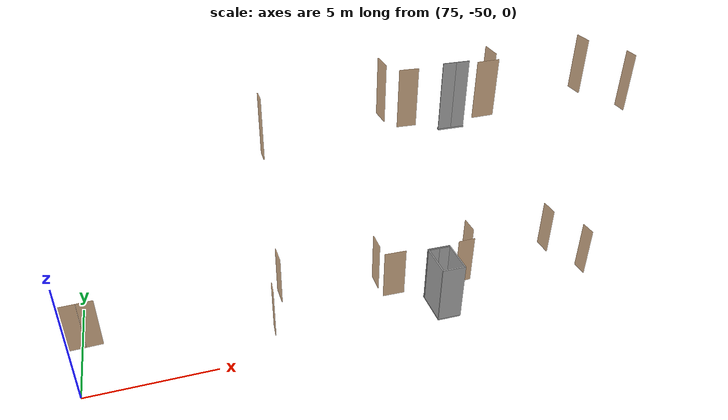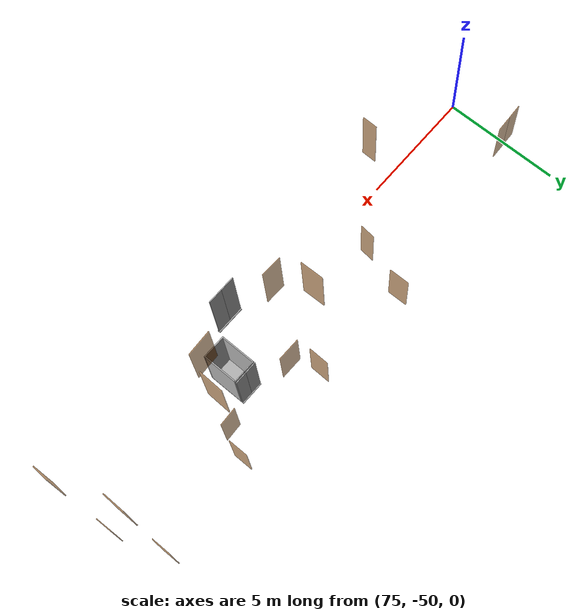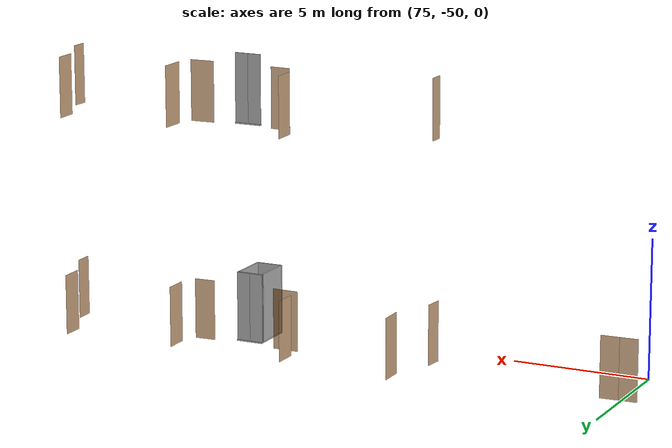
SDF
<sdf version="1.7">
 <world name="sim_world">
  <model name="TD0001EC2">
   <pose>75.12317994179705 -47.33942553554783 0.0 0 0 0.04271923748868774</pose>
   <link name="right">
    <pose>0.3341276760392261 0 1.11 0 0 0</pose>
    <visual name="right_visual">
     <geometry><box><size>0.6582553520784522 0.03 2.2</size></box></geometry>
     <material>
      <ambient>0.5 0.25 0 0.6</ambient>
      <diffuse>0.5 0.25 0 0.6</diffuse>
      <pbr><metal><metalness>0.0</metalness></metal></pbr>
     </material>
    </visual>
    <collision name="right_collision">
     <geometry><box><size>0.6582553520784522 0.03 2.2</size></box></geometry>
     <surface><contact><collide_bitmask>0x02</collide_bitmask></contact></surface>
    </collision>
    <inertial>
     <mass>50.0</mass>
     <inertia><ixx>20.17041666666667</ixx><iyy>21.972083785583035</iyy><izz>1.809167118916363</izz></inertia>
    </inertial>
   </link>
   <joint name="right_joint" type="revolute">
    <parent>world</parent>
    <child>right</child>
    <axis><xyz>0 0 -1</xyz><limit><lower>0</lower><upper>1.57</upper></limit></axis>
    <pose>0.3341276760392261 0 0 0 0 0</pose>
   </joint>
   <link name="left">
    <pose>-0.3341276760392261 0 1.11 0 0 0</pose>
    <visual name="left_visual">
     <geometry><box><size>0.6582553520784522 0.03 2.2</size></box></geometry>
     <material>
      <ambient>0.5 0.25 0 0.6</ambient>
      <diffuse>0.5 0.25 0 0.6</diffuse>
      <pbr><metal><metalness>0.0</metalness></metal></pbr>
     </material>
    </visual>
    <collision name="left_collision">
     <geometry><box><size>0.6582553520784522 0.03 2.2</size></box></geometry>
     <surface><contact><collide_bitmask>0x02</collide_bitmask></contact></surface>
    </collision>
    <inertial>
     <mass>50.0</mass>
     <inertia><ixx>20.17041666666667</ixx><iyy>21.972083785583035</iyy><izz>1.809167118916363</izz></inertia>
    </inertial>
   </link>
   <joint name="left_joint" type="revolute">
    <parent>world</parent>
    <child>left</child>
    <axis><xyz>0 0 -1</xyz><limit><lower>-1.57</lower><upper>0</upper></limit></axis>
    <pose>-0.3341276760392261 0 0 0 0 0</pose>
   </joint>
   <plugin name="register_component" filename="libregister_component.so">
    <component name="Door">
     <v_max_door>0.5</v_max_door>
     <a_max_door>0.3</a_max_door>
     <a_nom_door>0.15</a_nom_door>
     <dx_min_door>0.01</dx_min_door>
     <f_max_door>500.0</f_max_door>
     <ros_interface>true</ros_interface>
     <door name="TD0001EC2" type="DoubleSwingDoor" left_joint_name="left_joint" right_joint_name="right_joint"/>
    </component>
   </plugin>
  </model>
  <model name="bano012">
   <pose>82.44700350917586 -48.49807562310532 0.0 0 0 1.470619011720645</pose>
   <link name="right">
    <pose>0 0 1.11 0 0 0</pose>
    <visual name="right_visual">
     <geometry><box><size>0.6442041280268124 0.03 2.2</size></box></geometry>
     <material>
      <ambient>0.5 0.25 0 0.6</ambient>
      <diffuse>0.5 0.25 0 0.6</diffuse>
      <pbr><metal><metalness>0.0</metalness></metal></pbr>
     </material>
    </visual>
    <collision name="right_collision">
     <geometry><box><size>0.6442041280268124 0.03 2.2</size></box></geometry>
     <surface><contact><collide_bitmask>0x02</collide_bitmask></contact></surface>
    </collision>
    <inertial>
     <mass>50.0</mass>
     <inertia><ixx>20.17041666666667</ixx><iyy>21.895828994028278</iyy><izz>1.732912327361607</izz></inertia>
    </inertial>
   </link>
   <joint name="right_joint" type="revolute">
    <parent>world</parent>
    <child>right</child>
    <axis><xyz>0 0 -1</xyz><limit><lower>0</lower><upper>1.57</upper></limit></axis>
    <pose>0.3271020640134062 0 0 0 0 0</pose>
   </joint>
   <plugin name="register_component" filename="libregister_component.so">
    <component name="Door">
     <v_max_door>0.5</v_max_door>
     <a_max_door>0.3</a_max_door>
     <a_nom_door>0.15</a_nom_door>
     <dx_min_door>0.01</dx_min_door>
     <f_max_door>500.0</f_max_door>
     <ros_interface>true</ros_interface>
     <door name="bano012" type="SwingDoor" left_joint_name="empty_joint" right_joint_name="right_joint"/>
    </component>
   </plugin>
  </model>
  <model name="bano011">
   <pose>83.10448165831423 -46.433011116580694 0.0 0 0 1.5813146373530425</pose>
   <link name="right">
    <pose>0 0 1.11 0 0 0</pose>
    <visual name="right_visual">
     <geometry><box><size>0.8585081539588288 0.03 2.2</size></box></geometry>
     <material>
      <ambient>0.5 0.25 0 0.6</ambient>
      <diffuse>0.5 0.25 0 0.6</diffuse>
      <pbr><metal><metalness>0.0</metalness></metal></pbr>
     </material>
    </visual>
    <collision name="right_collision">
     <geometry><box><size>0.8585081539588288 0.03 2.2</size></box></geometry>
     <surface><contact><collide_bitmask>0x02</collide_bitmask></contact></surface>
    </collision>
    <inertial>
     <mass>50.0</mass>
     <inertia><ixx>20.17041666666667</ixx><iyy>23.237651043390823</iyy><izz>3.074734376724151</izz></inertia>
    </inertial>
   </link>
   <joint name="right_joint" type="revolute">
    <parent>world</parent>
    <child>right</child>
    <axis><xyz>0 0 -1</xyz><limit><lower>0</lower><upper>1.57</upper></limit></axis>
    <pose>0.4342540769794144 0 0 0 0 0</pose>
   </joint>
   <plugin name="register_component" filename="libregister_component.so">
    <component name="Door">
     <v_max_door>0.5</v_max_door>
     <a_max_door>0.3</a_max_door>
     <a_nom_door>0.15</a_nom_door>
     <dx_min_door>0.01</dx_min_door>
     <f_max_door>500.0</f_max_door>
     <ros_interface>true</ros_interface>
     <door name="bano011" type="SwingDoor" left_joint_name="empty_joint" right_joint_name="right_joint"/>
    </component>
   </plugin>
  </model>
  <model name="TD0009CW">
   <pose>87.36086317499587 -46.727566624388615 0.0 0 0 1.548810095529099</pose>
   <link name="right">
    <pose>0 0 1.11 0 0 0</pose>
    <visual name="right_visual">
     <geometry><box><size>0.8506552947807262 0.03 2.2</size></box></geometry>
     <material>
      <ambient>0.5 0.25 0 0.6</ambient>
      <diffuse>0.5 0.25 0 0.6</diffuse>
      <pbr><metal><metalness>0.0</metalness></metal></pbr>
     </material>
    </visual>
    <collision name="right_collision">
     <geometry><box><size>0.8506552947807262 0.03 2.2</size></box></geometry>
     <surface><contact><collide_bitmask>0x02</collide_bitmask></contact></surface>
    </collision>
    <inertial>
     <mass>50.0</mass>
     <inertia><ixx>20.17041666666667</ixx><iyy>23.181726793910357</iyy><izz>3.0188101272436842</izz></inertia>
    </inertial>
   </link>
   <joint name="right_joint" type="revolute">
    <parent>world</parent>
    <child>right</child>
    <axis><xyz>0 0 -1</xyz><limit><lower>0</lower><upper>1.57</upper></limit></axis>
    <pose>0.4303276473903631 0 0 0 0 0</pose>
   </joint>
   <plugin name="register_component" filename="libregister_component.so">
    <component name="Door">
     <v_max_door>0.5</v_max_door>
     <a_max_door>0.3</a_max_door>
     <a_nom_door>0.15</a_nom_door>
     <dx_min_door>0.01</dx_min_door>
     <f_max_door>500.0</f_max_door>
     <ros_interface>true</ros_interface>
     <door name="TD0009CW" type="SwingDoor" left_joint_name="empty_joint" right_joint_name="right_joint"/>
    </component>
   </plugin>
  </model>
  <model name="bano015">
   <pose>87.85361827983951 -47.72009086205543 0.0 0 0 3.131120733187098</pose>
   <link name="right">
    <pose>0 0 1.11 0 0 0</pose>
    <visual name="right_visual">
     <geometry><box><size>0.9523774060063468 0.03 2.2</size></box></geometry>
     <material>
      <ambient>0.5 0.25 0 0.6</ambient>
      <diffuse>0.5 0.25 0 0.6</diffuse>
      <pbr><metal><metalness>0.0</metalness></metal></pbr>
     </material>
    </visual>
    <collision name="right_collision">
     <geometry><box><size>0.9523774060063468 0.03 2.2</size></box></geometry>
     <surface><contact><collide_bitmask>0x02</collide_bitmask></contact></surface>
    </collision>
    <inertial>
     <mass>50.0</mass>
     <inertia><ixx>20.17041666666667</ixx><iyy>23.945928014464076</iyy><izz>3.7830113477974083</izz></inertia>
    </inertial>
   </link>
   <joint name="right_joint" type="revolute">
    <parent>world</parent>
    <child>right</child>
    <axis><xyz>0 0 -1</xyz><limit><lower>0</lower><upper>1.57</upper></limit></axis>
    <pose>0.4811887030031734 0 0 0 0 0</pose>
   </joint>
   <plugin name="register_component" filename="libregister_component.so">
    <component name="Door">
     <v_max_door>0.5</v_max_door>
     <a_max_door>0.3</a_max_door>
     <a_nom_door>0.15</a_nom_door>
     <dx_min_door>0.01</dx_min_door>
     <f_max_door>500.0</f_max_door>
     <ros_interface>true</ros_interface>
     <door name="bano015" type="SwingDoor" left_joint_name="empty_joint" right_joint_name="right_joint"/>
    </component>
   </plugin>
  </model>
  <model name="bano016">
   <pose>91.10995652086022 -47.73456781580528 0.0 0 0 0.0493386622574908</pose>
   <link name="right">
    <pose>0 0 1.11 0 0 0</pose>
    <visual name="right_visual">
     <geometry><box><size>0.7568425849847848 0.03 2.2</size></box></geometry>
     <material>
      <ambient>0.5 0.25 0 0.6</ambient>
      <diffuse>0.5 0.25 0 0.6</diffuse>
      <pbr><metal><metalness>0.0</metalness></metal></pbr>
     </material>
    </visual>
    <collision name="right_collision">
     <geometry><box><size>0.7568425849847848 0.03 2.2</size></box></geometry>
     <surface><contact><collide_bitmask>0x02</collide_bitmask></contact></surface>
    </collision>
    <inertial>
     <mass>50.0</mass>
     <inertia><ixx>20.17041666666667</ixx><iyy>22.553377910193554</iyy><izz>2.3904612435268806</izz></inertia>
    </inertial>
   </link>
   <joint name="right_joint" type="revolute">
    <parent>world</parent>
    <child>right</child>
    <axis><xyz>0 0 1</xyz><limit><lower>0</lower><upper>1.57</upper></limit></axis>
    <pose>0.38342129249239243 0 0 0 0 0</pose>
   </joint>
   <plugin name="register_component" filename="libregister_component.so">
    <component name="Door">
     <v_max_door>0.5</v_max_door>
     <a_max_door>0.3</a_max_door>
     <a_nom_door>0.15</a_nom_door>
     <dx_min_door>0.01</dx_min_door>
     <f_max_door>500.0</f_max_door>
     <ros_interface>true</ros_interface>
     <door name="bano016" type="SwingDoor" left_joint_name="empty_joint" right_joint_name="right_joint"/>
    </component>
   </plugin>
  </model>
  <model name="TD0010CW">
   <pose>91.71982905929562 -46.703932155708635 0.0 0 0 1.5707963267948966</pose>
   <link name="right">
    <pose>0 0 1.11 0 0 0</pose>
    <visual name="right_visual">
     <geometry><box><size>0.8220769448283869 0.03 2.2</size></box></geometry>
     <material>
      <ambient>0.5 0.25 0 0.6</ambient>
      <diffuse>0.5 0.25 0 0.6</diffuse>
      <pbr><metal><metalness>0.0</metalness></metal></pbr>
     </material>
    </visual>
    <collision name="right_collision">
     <geometry><box><size>0.8220769448283869 0.03 2.2</size></box></geometry>
     <surface><contact><collide_bitmask>0x02</collide_bitmask></contact></surface>
    </collision>
    <inertial>
     <mass>50.0</mass>
     <inertia><ixx>20.17041666666667</ixx><iyy>22.9825437634099</iyy><izz>2.819627096743228</izz></inertia>
    </inertial>
   </link>
   <joint name="right_joint" type="revolute">
    <parent>world</parent>
    <child>right</child>
    <axis><xyz>0 0 1</xyz><limit><lower>0</lower><upper>1.57</upper></limit></axis>
    <pose>0.41603847241419345 0 0 0 0 0</pose>
   </joint>
   <plugin name="register_component" filename="libregister_component.so">
    <component name="Door">
     <v_max_door>0.5</v_max_door>
     <a_max_door>0.3</a_max_door>
     <a_nom_door>0.15</a_nom_door>
     <dx_min_door>0.01</dx_min_door>
     <f_max_door>500.0</f_max_door>
     <ros_interface>true</ros_interface>
     <door name="TD0010CW" type="SwingDoor" left_joint_name="empty_joint" right_joint_name="right_joint"/>
    </component>
   </plugin>
  </model>
  <model name="bano017">
   <pose>95.89357971515548 -46.43758987404577 0.0 0 0 1.5818987977262087</pose>
   <link name="right">
    <pose>0 0 1.11 0 0 0</pose>
    <visual name="right_visual">
     <geometry><box><size>0.8128130271172215 0.03 2.2</size></box></geometry>
     <material>
      <ambient>0.5 0.25 0 0.6</ambient>
      <diffuse>0.5 0.25 0 0.6</diffuse>
      <pbr><metal><metalness>0.0</metalness></metal></pbr>
     </material>
    </visual>
    <collision name="right_collision">
     <geometry><box><size>0.8128130271172215 0.03 2.2</size></box></geometry>
     <surface><contact><collide_bitmask>0x02</collide_bitmask></contact></surface>
    </collision>
    <inertial>
     <mass>50.0</mass>
     <inertia><ixx>20.17041666666667</ixx><iyy>22.919437571047762</iyy><izz>2.7565209043810874</izz></inertia>
    </inertial>
   </link>
   <joint name="right_joint" type="revolute">
    <parent>world</parent>
    <child>right</child>
    <axis><xyz>0 0 1</xyz><limit><lower>0</lower><upper>1.57</upper></limit></axis>
    <pose>0.41140651355861074 0 0 0 0 0</pose>
   </joint>
   <plugin name="register_component" filename="libregister_component.so">
    <component name="Door">
     <v_max_door>0.5</v_max_door>
     <a_max_door>0.3</a_max_door>
     <a_nom_door>0.15</a_nom_door>
     <dx_min_door>0.01</dx_min_door>
     <f_max_door>500.0</f_max_door>
     <ros_interface>true</ros_interface>
     <door name="bano017" type="SwingDoor" left_joint_name="empty_joint" right_joint_name="right_joint"/>
    </component>
   </plugin>
  </model>
  <model name="bano018">
   <pose>96.61255686161878 -48.44135738725127 0.0 0 0 1.5939053097456333</pose>
   <link name="right">
    <pose>0 0 1.11 0 0 0</pose>
    <visual name="right_visual">
     <geometry><box><size>0.6631448530400826 0.03 2.2</size></box></geometry>
     <material>
      <ambient>0.5 0.25 0 0.6</ambient>
      <diffuse>0.5 0.25 0 0.6</diffuse>
      <pbr><metal><metalness>0.0</metalness></metal></pbr>
     </material>
    </visual>
    <collision name="right_collision">
     <geometry><box><size>0.6631448530400826 0.03 2.2</size></box></geometry>
     <surface><contact><collide_bitmask>0x02</collide_bitmask></contact></surface>
    </collision>
    <inertial>
     <mass>50.0</mass>
     <inertia><ixx>20.17041666666667</ixx><iyy>21.999004567139806</iyy><izz>1.8360879004731367</izz></inertia>
    </inertial>
   </link>
   <joint name="right_joint" type="revolute">
    <parent>world</parent>
    <child>right</child>
    <axis><xyz>0 0 1</xyz><limit><lower>0</lower><upper>1.57</upper></limit></axis>
    <pose>0.3365724265200413 0 0 0 0 0</pose>
   </joint>
   <plugin name="register_component" filename="libregister_component.so">
    <component name="Door">
     <v_max_door>0.5</v_max_door>
     <a_max_door>0.3</a_max_door>
     <a_nom_door>0.15</a_nom_door>
     <dx_min_door>0.01</dx_min_door>
     <f_max_door>500.0</f_max_door>
     <ros_interface>true</ros_interface>
     <door name="bano018" type="SwingDoor" left_joint_name="empty_joint" right_joint_name="right_joint"/>
    </component>
   </plugin>
  </model>
  <model name="bano12">
   <pose>82.42250377956982 -48.55080670870155 8.0 0 0 1.549933353693263</pose>
   <link name="right">
    <pose>0 0 1.11 0 0 0</pose>
    <visual name="right_visual">
     <geometry><box><size>0.5266028313164499 0.03 2.2</size></box></geometry>
     <material>
      <ambient>0.5 0.25 0 0.6</ambient>
      <diffuse>0.5 0.25 0 0.6</diffuse>
      <pbr><metal><metalness>0.0</metalness></metal></pbr>
     </material>
    </visual>
    <collision name="right_collision">
     <geometry><box><size>0.5266028313164499 0.03 2.2</size></box></geometry>
     <surface><contact><collide_bitmask>0x02</collide_bitmask></contact></surface>
    </collision>
    <inertial>
     <mass>50.0</mass>
     <inertia><ixx>20.17041666666667</ixx><iyy>21.322127258127093</iyy><izz>1.1592105914604227</izz></inertia>
    </inertial>
   </link>
   <joint name="right_joint" type="revolute">
    <parent>world</parent>
    <child>right</child>
    <axis><xyz>0 0 -1</xyz><limit><lower>0</lower><upper>1.57</upper></limit></axis>
    <pose>0.26830141565822496 0 0 0 0 0</pose>
   </joint>
   <plugin name="register_component" filename="libregister_component.so">
    <component name="Door">
     <v_max_door>0.5</v_max_door>
     <a_max_door>0.3</a_max_door>
     <a_nom_door>0.15</a_nom_door>
     <dx_min_door>0.01</dx_min_door>
     <f_max_door>500.0</f_max_door>
     <ros_interface>true</ros_interface>
     <door name="bano12" type="SwingDoor" left_joint_name="empty_joint" right_joint_name="right_joint"/>
    </component>
   </plugin>
  </model>
  <model name="TD0116CW">
   <pose>87.33556820432368 -46.71327545660678 8.0 0 0 1.5897047612231876</pose>
   <link name="right">
    <pose>0 0 1.11 0 0 0</pose>
    <visual name="right_visual">
     <geometry><box><size>0.8193714331441315 0.03 2.2</size></box></geometry>
     <material>
      <ambient>0.5 0.25 0 0.6</ambient>
      <diffuse>0.5 0.25 0 0.6</diffuse>
      <pbr><metal><metalness>0.0</metalness></metal></pbr>
     </material>
    </visual>
    <collision name="right_collision">
     <geometry><box><size>0.8193714331441315 0.03 2.2</size></box></geometry>
     <surface><contact><collide_bitmask>0x02</collide_bitmask></contact></surface>
    </collision>
    <inertial>
     <mass>50.0</mass>
     <inertia><ixx>20.17041666666667</ixx><iyy>22.964039772719456</iyy><izz>2.8011231060527835</izz></inertia>
    </inertial>
   </link>
   <joint name="right_joint" type="revolute">
    <parent>world</parent>
    <child>right</child>
    <axis><xyz>0 0 -1</xyz><limit><lower>0</lower><upper>1.57</upper></limit></axis>
    <pose>0.41468571657206577 0 0 0 0 0</pose>
   </joint>
   <plugin name="register_component" filename="libregister_component.so">
    <component name="Door">
     <v_max_door>0.5</v_max_door>
     <a_max_door>0.3</a_max_door>
     <a_nom_door>0.15</a_nom_door>
     <dx_min_door>0.01</dx_min_door>
     <f_max_door>500.0</f_max_door>
     <ros_interface>true</ros_interface>
     <door name="TD0116CW" type="SwingDoor" left_joint_name="empty_joint" right_joint_name="right_joint"/>
    </component>
   </plugin>
  </model>
  <model name="bano15">
   <pose>87.99969229539565 -47.717978297521626 8.0 0 0 3.1074870969399293</pose>
   <link name="right">
    <pose>0 0 1.11 0 0 0</pose>
    <visual name="right_visual">
     <geometry><box><size>0.727989818265767 0.03 2.2</size></box></geometry>
     <material>
      <ambient>0.5 0.25 0 0.6</ambient>
      <diffuse>0.5 0.25 0 0.6</diffuse>
      <pbr><metal><metalness>0.0</metalness></metal></pbr>
     </material>
    </visual>
    <collision name="right_collision">
     <geometry><box><size>0.727989818265767 0.03 2.2</size></box></geometry>
     <surface><contact><collide_bitmask>0x02</collide_bitmask></contact></surface>
    </collision>
    <inertial>
     <mass>50.0</mass>
     <inertia><ixx>20.17041666666667</ixx><iyy>22.374871564577607</iyy><izz>2.211954897910936</izz></inertia>
    </inertial>
   </link>
   <joint name="right_joint" type="revolute">
    <parent>world</parent>
    <child>right</child>
    <axis><xyz>0 0 -1</xyz><limit><lower>0</lower><upper>1.57</upper></limit></axis>
    <pose>0.3689949091328835 0 0 0 0 0</pose>
   </joint>
   <plugin name="register_component" filename="libregister_component.so">
    <component name="Door">
     <v_max_door>0.5</v_max_door>
     <a_max_door>0.3</a_max_door>
     <a_nom_door>0.15</a_nom_door>
     <dx_min_door>0.01</dx_min_door>
     <f_max_door>500.0</f_max_door>
     <ros_interface>true</ros_interface>
     <door name="bano15" type="SwingDoor" left_joint_name="empty_joint" right_joint_name="right_joint"/>
    </component>
   </plugin>
  </model>
  <model name="bano16">
   <pose>91.1009032946051 -47.73355049538572 8.0 0 0 0.04892582185563511</pose>
   <link name="right">
    <pose>0 0 1.11 0 0 0</pose>
    <visual name="right_visual">
     <geometry><box><size>0.8818100781607421 0.03 2.2</size></box></geometry>
     <material>
      <ambient>0.5 0.25 0 0.6</ambient>
      <diffuse>0.5 0.25 0 0.6</diffuse>
      <pbr><metal><metalness>0.0</metalness></metal></pbr>
     </material>
    </visual>
    <collision name="right_collision">
     <geometry><box><size>0.8818100781607421 0.03 2.2</size></box></geometry>
     <surface><contact><collide_bitmask>0x02</collide_bitmask></contact></surface>
    </collision>
    <inertial>
     <mass>50.0</mass>
     <inertia><ixx>20.17041666666667</ixx><iyy>23.406620891441065</iyy><izz>3.2437042247743926</izz></inertia>
    </inertial>
   </link>
   <joint name="right_joint" type="revolute">
    <parent>world</parent>
    <child>right</child>
    <axis><xyz>0 0 1</xyz><limit><lower>0</lower><upper>1.57</upper></limit></axis>
    <pose>0.44590503908037105 0 0 0 0 0</pose>
   </joint>
   <plugin name="register_component" filename="libregister_component.so">
    <component name="Door">
     <v_max_door>0.5</v_max_door>
     <a_max_door>0.3</a_max_door>
     <a_nom_door>0.15</a_nom_door>
     <dx_min_door>0.01</dx_min_door>
     <f_max_door>500.0</f_max_door>
     <ros_interface>true</ros_interface>
     <door name="bano16" type="SwingDoor" left_joint_name="empty_joint" right_joint_name="right_joint"/>
    </component>
   </plugin>
  </model>
  <model name="bano17">
   <pose>95.94125941713821 -46.42989011922741 8.0 0 0 1.5709753921216942</pose>
   <link name="right">
    <pose>0 0 1.11 0 0 0</pose>
    <visual name="right_visual">
     <geometry><box><size>0.7624598038857092 0.03 2.2</size></box></geometry>
     <material>
      <ambient>0.5 0.25 0 0.6</ambient>
      <diffuse>0.5 0.25 0 0.6</diffuse>
      <pbr><metal><metalness>0.0</metalness></metal></pbr>
     </material>
    </visual>
    <collision name="right_collision">
     <geometry><box><size>0.7624598038857092 0.03 2.2</size></box></geometry>
     <surface><contact><collide_bitmask>0x02</collide_bitmask></contact></surface>
    </collision>
    <inertial>
     <mass>50.0</mass>
     <inertia><ixx>20.17041666666667</ixx><iyy>22.588937302255978</iyy><izz>2.426020635589309</izz></inertia>
    </inertial>
   </link>
   <joint name="right_joint" type="revolute">
    <parent>world</parent>
    <child>right</child>
    <axis><xyz>0 0 1</xyz><limit><lower>0</lower><upper>1.57</upper></limit></axis>
    <pose>0.3862299019428546 0 0 0 0 0</pose>
   </joint>
   <plugin name="register_component" filename="libregister_component.so">
    <component name="Door">
     <v_max_door>0.5</v_max_door>
     <a_max_door>0.3</a_max_door>
     <a_nom_door>0.15</a_nom_door>
     <dx_min_door>0.01</dx_min_door>
     <f_max_door>500.0</f_max_door>
     <ros_interface>true</ros_interface>
     <door name="bano17" type="SwingDoor" left_joint_name="empty_joint" right_joint_name="right_joint"/>
    </component>
   </plugin>
  </model>
  <model name="bano18">
   <pose>96.63959571975191 -48.52446806274959 8.0 0 0 1.5228293427319184</pose>
   <link name="right">
    <pose>0 0 1.11 0 0 0</pose>
    <visual name="right_visual">
     <geometry><box><size>0.5608595809617218 0.03 2.2</size></box></geometry>
     <material>
      <ambient>0.5 0.25 0 0.6</ambient>
      <diffuse>0.5 0.25 0 0.6</diffuse>
      <pbr><metal><metalness>0.0</metalness></metal></pbr>
     </material>
    </visual>
    <collision name="right_collision">
     <geometry><box><size>0.5608595809617218 0.03 2.2</size></box></geometry>
     <surface><contact><collide_bitmask>0x02</collide_bitmask></contact></surface>
    </collision>
    <inertial>
     <mass>50.0</mass>
     <inertia><ixx>20.17041666666667</ixx><iyy>21.477347789818996</iyy><izz>1.314431123152326</izz></inertia>
    </inertial>
   </link>
   <joint name="right_joint" type="revolute">
    <parent>world</parent>
    <child>right</child>
    <axis><xyz>0 0 1</xyz><limit><lower>0</lower><upper>1.57</upper></limit></axis>
    <pose>0.2854297904808609 0 0 0 0 0</pose>
   </joint>
   <plugin name="register_component" filename="libregister_component.so">
    <component name="Door">
     <v_max_door>0.5</v_max_door>
     <a_max_door>0.3</a_max_door>
     <a_nom_door>0.15</a_nom_door>
     <dx_min_door>0.01</dx_min_door>
     <f_max_door>500.0</f_max_door>
     <ros_interface>true</ros_interface>
     <door name="bano18" type="SwingDoor" left_joint_name="empty_joint" right_joint_name="right_joint"/>
    </component>
   </plugin>
  </model>
  <model name="TD0117CW">
   <pose>91.73253180637943 -46.70548493211402 8.0 0 0 1.5422422993392775</pose>
   <link name="right">
    <pose>0 0 1.11 0 0 0</pose>
    <visual name="right_visual">
     <geometry><box><size>0.8791200049220861 0.03 2.2</size></box></geometry>
     <material>
      <ambient>0.5 0.25 0 0.6</ambient>
      <diffuse>0.5 0.25 0 0.6</diffuse>
      <pbr><metal><metalness>0.0</metalness></metal></pbr>
     </material>
    </visual>
    <collision name="right_collision">
     <geometry><box><size>0.8791200049220861 0.03 2.2</size></box></geometry>
     <surface><contact><collide_bitmask>0x02</collide_bitmask></contact></surface>
    </collision>
    <inertial>
     <mass>50.0</mass>
     <inertia><ixx>20.17041666666667</ixx><iyy>23.386883262725874</iyy><izz>3.223966596059203</izz></inertia>
    </inertial>
   </link>
   <joint name="right_joint" type="revolute">
    <parent>world</parent>
    <child>right</child>
    <axis><xyz>0 0 1</xyz><limit><lower>0</lower><upper>1.57</upper></limit></axis>
    <pose>0.44456000246104305 0 0 0 0 0</pose>
   </joint>
   <plugin name="register_component" filename="libregister_component.so">
    <component name="Door">
     <v_max_door>0.5</v_max_door>
     <a_max_door>0.3</a_max_door>
     <a_nom_door>0.15</a_nom_door>
     <dx_min_door>0.01</dx_min_door>
     <f_max_door>500.0</f_max_door>
     <ros_interface>true</ros_interface>
     <door name="TD0117CW" type="SwingDoor" left_joint_name="empty_joint" right_joint_name="right_joint"/>
    </component>
   </plugin>
  </model>
  <model name="ShaftDoor_lift3_west_L1_lift3_door">
   <pose>89.55510924323717 -48.24208363320131 0.0 0 0 0.0</pose>
   <link name="right_door">
    <pose>0.25 0 1.25 0 0 0</pose>
    <visual name="right_door_visual">
     <geometry><box><size>0.5 0.03 2.5</size></box></geometry>
     <material>
      <ambient>0.5 0.5 0.5 1</ambient>
      <diffuse>0.7 0.7 0.7 1</diffuse>
      <specular>0.6 0.6 0.6 1</specular>
      <emissive>0.1 0.1 0.1 1</emissive>
     </material>
    </visual>
    <collision name="right_door_collision">
     <geometry><box><size>0.5 0.03 2.5</size></box></geometry>
     <surface><contact><collide_bitmask>0x02</collide_bitmask></contact></surface>
    </collision>
   </link>
   <link name="left_door">
    <pose>-0.25 0 1.25 0 0 0</pose>
    <visual name="left_door_visual">
     <geometry><box><size>0.5 0.03 2.5</size></box></geometry>
     <material>
      <ambient>0.5 0.5 0.5 1</ambient>
      <diffuse>0.7 0.7 0.7 1</diffuse>
      <specular>0.6 0.6 0.6 1</specular>
      <emissive>0.1 0.1 0.1 1</emissive>
     </material>
    </visual>
    <collision name="left_door_collision">
     <geometry><box><size>0.5 0.03 2.5</size></box></geometry>
     <surface><contact><collide_bitmask>0x02</collide_bitmask></contact></surface>
    </collision>
   </link>
   <joint name="right_joint" type="prismatic">
    <parent>world</parent>
    <child>right_door</child>
    <axis><xyz>1 0 0</xyz><limit><lower>0</lower><upper>0.5</upper></limit></axis>
   </joint>
   <joint name="left_joint" type="prismatic">
    <parent>world</parent>
    <child>left_door</child>
    <axis><xyz>1 0 0</xyz><limit><lower>-0.5</lower><upper>0</upper></limit></axis>
   </joint>
   <link name="ramp">
    <pose>0 0 -0.025 0 0 0</pose>
    <visual name="ramp_visual">
     <geometry><box><size>1.0 0.1 0.05</size></box></geometry>
     <material>
      <ambient>0.5 0.5 0.5 1</ambient>
      <diffuse>0.7 0.7 0.7 1</diffuse>
      <specular>0.6 0.6 0.6 1</specular>
      <emissive>0.1 0.1 0.1 1</emissive>
     </material>
    </visual>
    <collision name="ramp_collision">
     <geometry><box><size>1.0 0.1 0.05</size></box></geometry>
     <surface><contact><collide_bitmask>0x02</collide_bitmask></contact></surface>
    </collision>
   </link>
   <joint name="ramp_joint" type="fixed"><parent>world</parent><child>ramp</child></joint>
   <plugin name="register_component" filename="libregister_component.so">
    <component name="Door">
     <v_max_door>0.3</v_max_door>
     <a_max_door>0.2</a_max_door>
     <a_nom_door>0.1</a_nom_door>
     <dx_min_door>0.0001</dx_min_door>
     <f_max_door>35.0</f_max_door>
     <door left_joint_name="left_joint" name="ShaftDoor_lift3_west_L1_lift3_door" right_joint_name="right_joint" type="DoubleSlidingDoor"/>
    </component>
   </plugin>
  </model>
  <model name="ShaftDoor_lift3_west_L2_lift3_door">
   <pose>89.55510924323717 -48.24208363320131 8.0 0 0 0.0</pose>
   <link name="right_door">
    <pose>0.25 0 1.25 0 0 0</pose>
    <visual name="right_door_visual">
     <geometry><box><size>0.5 0.03 2.5</size></box></geometry>
     <material>
      <ambient>0.5 0.5 0.5 1</ambient>
      <diffuse>0.7 0.7 0.7 1</diffuse>
      <specular>0.6 0.6 0.6 1</specular>
      <emissive>0.1 0.1 0.1 1</emissive>
     </material>
    </visual>
    <collision name="right_door_collision">
     <geometry><box><size>0.5 0.03 2.5</size></box></geometry>
     <surface><contact><collide_bitmask>0x02</collide_bitmask></contact></surface>
    </collision>
   </link>
   <link name="left_door">
    <pose>-0.25 0 1.25 0 0 0</pose>
    <visual name="left_door_visual">
     <geometry><box><size>0.5 0.03 2.5</size></box></geometry>
     <material>
      <ambient>0.5 0.5 0.5 1</ambient>
      <diffuse>0.7 0.7 0.7 1</diffuse>
      <specular>0.6 0.6 0.6 1</specular>
      <emissive>0.1 0.1 0.1 1</emissive>
     </material>
    </visual>
    <collision name="left_door_collision">
     <geometry><box><size>0.5 0.03 2.5</size></box></geometry>
     <surface><contact><collide_bitmask>0x02</collide_bitmask></contact></surface>
    </collision>
   </link>
   <joint name="right_joint" type="prismatic">
    <parent>world</parent>
    <child>right_door</child>
    <axis><xyz>1 0 0</xyz><limit><lower>0</lower><upper>0.5</upper></limit></axis>
   </joint>
   <joint name="left_joint" type="prismatic">
    <parent>world</parent>
    <child>left_door</child>
    <axis><xyz>1 0 0</xyz><limit><lower>-0.5</lower><upper>0</upper></limit></axis>
   </joint>
   <link name="ramp">
    <pose>0 0 -0.025 0 0 0</pose>
    <visual name="ramp_visual">
     <geometry><box><size>1.0 0.1 0.05</size></box></geometry>
     <material>
      <ambient>0.5 0.5 0.5 1</ambient>
      <diffuse>0.7 0.7 0.7 1</diffuse>
      <specular>0.6 0.6 0.6 1</specular>
      <emissive>0.1 0.1 0.1 1</emissive>
     </material>
    </visual>
    <collision name="ramp_collision">
     <geometry><box><size>1.0 0.1 0.05</size></box></geometry>
     <surface><contact><collide_bitmask>0x02</collide_bitmask></contact></surface>
    </collision>
   </link>
   <joint name="ramp_joint" type="fixed"><parent>world</parent><child>ramp</child></joint>
   <plugin name="register_component" filename="libregister_component.so">
    <component name="Door">
     <v_max_door>0.3</v_max_door>
     <a_max_door>0.2</a_max_door>
     <a_nom_door>0.1</a_nom_door>
     <dx_min_door>0.0001</dx_min_door>
     <f_max_door>35.0</f_max_door>
     <door left_joint_name="left_joint" name="ShaftDoor_lift3_west_L2_lift3_door" right_joint_name="right_joint" type="DoubleSlidingDoor"/>
    </component>
   </plugin>
  </model>
  <model name="lift3_west">
   <link name="platform">
    <inertial><mass>1200</mass><inertia><ixx>100.25</ixx><iyy>225.25</iyy><izz>325.0</izz></inertia></inertial>
    <visual name="floor_visual">
     <pose>0 0 -0.025 0 0 0</pose>
     <geometry><box><size>1.0 1.5 0.05</size></box></geometry>
     <material>
      <ambient>0.5 0.5 0.5 1</ambient>
      <diffuse>0.7 0.7 0.7 1</diffuse>
      <specular>0.6 0.6 0.6 1</specular>
      <emissive>0.1 0.1 0.1 1</emissive>
     </material>
    </visual>
    <collision name="floor_collision">
     <pose>0 0 -0.025 0 0 0</pose>
     <geometry><box><size>1.0 1.5 0.05</size></box></geometry>
     <surface><contact><collide_bitmask>0x01</collide_bitmask></contact></surface>
    </collision>
    <visual name="frontwall1_visual">
     <pose>-0.5 0.725 1.25 0 0 0</pose>
     <geometry><box><size>0.0 0.05 2.5</size></box></geometry>
     <material>
      <ambient>0.5 0.5 0.5 1</ambient>
      <diffuse>0.7 0.7 0.7 1</diffuse>
      <specular>0.6 0.6 0.6 1</specular>
      <emissive>0.1 0.1 0.1 1</emissive>
     </material>
    </visual>
    <collision name="frontwall1_collision">
     <pose>-0.5 0.725 1.25 0 0 0</pose>
     <geometry><box><size>0.0 0.05 2.5</size></box></geometry>
     <surface><contact><collide_bitmask>0x01</collide_bitmask></contact></surface>
    </collision>
    <visual name="frontwall2_visual">
     <pose>0.5 0.725 1.25 0 0 0</pose>
     <geometry><box><size>0.0 0.05 2.5</size></box></geometry>
     <material>
      <ambient>0.5 0.5 0.5 1</ambient>
      <diffuse>0.7 0.7 0.7 1</diffuse>
      <specular>0.6 0.6 0.6 1</specular>
      <emissive>0.1 0.1 0.1 1</emissive>
     </material>
    </visual>
    <collision name="frontwall2_collision">
     <pose>0.5 0.725 1.25 0 0 0</pose>
     <geometry><box><size>0.0 0.05 2.5</size></box></geometry>
     <surface><contact><collide_bitmask>0x01</collide_bitmask></contact></surface>
    </collision>
    <visual name="backwall1_visual">
     <pose>0.0 -0.725 1.25 0 0 0</pose>
     <geometry><box><size>1.0 0.05 2.5</size></box></geometry>
     <material>
      <ambient>0.5 0.5 0.5 1</ambient>
      <diffuse>0.7 0.7 0.7 1</diffuse>
      <specular>0.6 0.6 0.6 1</specular>
      <emissive>0.1 0.1 0.1 1</emissive>
     </material>
    </visual>
    <collision name="backwall1_collision">
     <pose>0.0 -0.725 1.25 0 0 0</pose>
     <geometry><box><size>1.0 0.05 2.5</size></box></geometry>
     <surface><contact><collide_bitmask>0x01</collide_bitmask></contact></surface>
    </collision>
    <visual name="leftwall1_visual">
     <pose>-0.475 0.0 1.25 0 0 1.5707963267948966</pose>
     <geometry><box><size>1.4 0.05 2.5</size></box></geometry>
     <material>
      <ambient>0.5 0.5 0.5 1</ambient>
      <diffuse>0.7 0.7 0.7 1</diffuse>
      <specular>0.6 0.6 0.6 1</specular>
      <emissive>0.1 0.1 0.1 1</emissive>
     </material>
    </visual>
    <collision name="leftwall1_collision">
     <pose>-0.475 0.0 1.25 0 0 1.5707963267948966</pose>
     <geometry><box><size>1.4 0.05 2.5</size></box></geometry>
     <surface><contact><collide_bitmask>0x01</collide_bitmask></contact></surface>
    </collision>
    <visual name="rightwall1_visual">
     <pose>0.475 0.0 1.25 0 0 1.5707963267948966</pose>
     <geometry><box><size>1.4 0.05 2.5</size></box></geometry>
     <material>
      <ambient>0.5 0.5 0.5 1</ambient>
      <diffuse>0.7 0.7 0.7 1</diffuse>
      <specular>0.6 0.6 0.6 1</specular>
      <emissive>0.1 0.1 0.1 1</emissive>
     </material>
    </visual>
    <collision name="rightwall1_collision">
     <pose>0.475 0.0 1.25 0 0 1.5707963267948966</pose>
     <geometry><box><size>1.4 0.05 2.5</size></box></geometry>
     <surface><contact><collide_bitmask>0x01</collide_bitmask></contact></surface>
    </collision>
   </link>
   <joint name="cabin_joint" type="prismatic">
    <parent>world</parent>
    <child>platform</child>
    <axis><xyz>0 0 1</xyz></axis>
   </joint>
   <model name="CabinDoor_lift3_west_lift3_door">
    <pose>0.0 0.725 0 0 0 0.0</pose>
    <link name="right_door">
     <pose>0.25 0 1.25 0 0 0</pose>
     <visual name="right_door_visual">
      <geometry><box><size>0.5 0.03 2.5</size></box></geometry>
      <material>
       <ambient>0.5 0.5 0.5 1</ambient>
       <diffuse>0.7 0.7 0.7 1</diffuse>
       <specular>0.6 0.6 0.6 1</specular>
       <emissive>0.1 0.1 0.1 1</emissive>
      </material>
     </visual>
     <collision name="right_door_collision">
      <geometry><box><size>0.5 0.03 2.5</size></box></geometry>
      <surface><contact><collide_bitmask>0x02</collide_bitmask></contact></surface>
     </collision>
    </link>
    <link name="left_door">
     <pose>-0.25 0 1.25 0 0 0</pose>
     <visual name="left_door_visual">
      <geometry><box><size>0.5 0.03 2.5</size></box></geometry>
      <material>
       <ambient>0.5 0.5 0.5 1</ambient>
       <diffuse>0.7 0.7 0.7 1</diffuse>
       <specular>0.6 0.6 0.6 1</specular>
       <emissive>0.1 0.1 0.1 1</emissive>
      </material>
     </visual>
     <collision name="left_door_collision">
      <geometry><box><size>0.5 0.03 2.5</size></box></geometry>
      <surface><contact><collide_bitmask>0x02</collide_bitmask></contact></surface>
     </collision>
    </link>
    <plugin name="register_component" filename="libregister_component.so">
     <component name="Door">
      <v_max_door>0.3</v_max_door>
      <a_max_door>0.2</a_max_door>
      <a_nom_door>0.1</a_nom_door>
      <dx_min_door>0.0001</dx_min_door>
      <f_max_door>35.0</f_max_door>
      <door left_joint_name="CabinDoor_lift3_west_lift3_door_left_joint" name="CabinDoor_lift3_west_lift3_door" right_joint_name="CabinDoor_lift3_west_lift3_door_right_joint" type="DoubleSlidingDoor"/>
     </component>
    </plugin>
   </model>
   <joint name="CabinDoor_lift3_west_lift3_door_right_joint" type="prismatic">
    <parent>platform</parent>
    <child>CabinDoor_lift3_west_lift3_door::right_door</child>
    <axis><xyz>1 0 0</xyz><limit><lower>0</lower><upper>0.5</upper></limit></axis>
   </joint>
   <joint name="CabinDoor_lift3_west_lift3_door_left_joint" type="prismatic">
    <parent>platform</parent>
    <child>CabinDoor_lift3_west_lift3_door::left_door</child>
    <axis><xyz>1 0 0</xyz><limit><lower>-0.5</lower><upper>0</upper></limit></axis>
   </joint>
   <plugin name="register_component" filename="libregister_component.so">
    <component name="Lift">
     <lift_name>lift3_west</lift_name>
     <floor name="L1" elevation="0.0">
      <door_pair cabin_door="CabinDoor_lift3_west_lift3_door" shaft_door="ShaftDoor_lift3_west_L1_lift3_door"/>
     </floor>
     <floor name="L2" elevation="8.0">
      <door_pair cabin_door="CabinDoor_lift3_west_lift3_door" shaft_door="ShaftDoor_lift3_west_L2_lift3_door"/>
     </floor>
     <initial_floor>L1</initial_floor>
     <v_max_cabin>2.0</v_max_cabin>
     <a_max_cabin>1.2</a_max_cabin>
     <a_nom_cabin>1.0</a_nom_cabin>
     <dx_min_cabin>0.001</dx_min_cabin>
     <f_max_cabin>25323.0</f_max_cabin>
     <cabin_joint_name>cabin_joint</cabin_joint_name>
    </component>
   </plugin>
   <pose>89.55510924323717 -49.04208363320131 0 0 0 0.0</pose>
  </model>
 </world>
</sdf>
